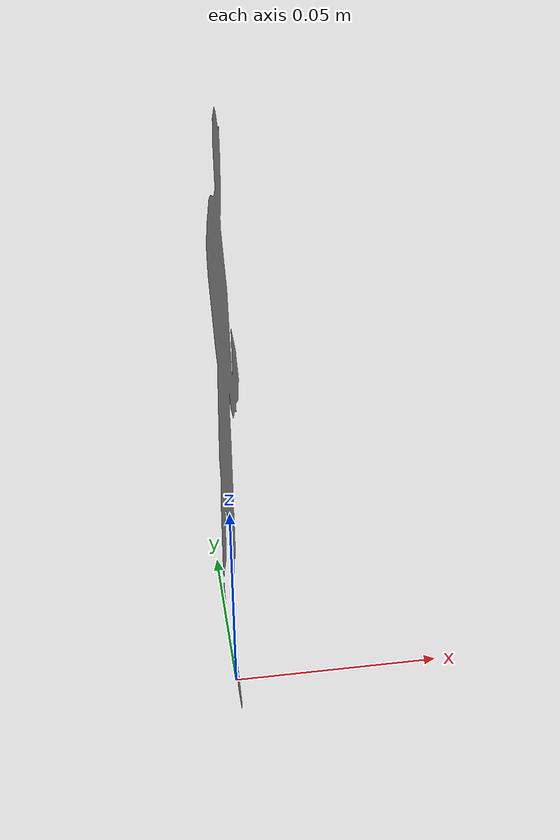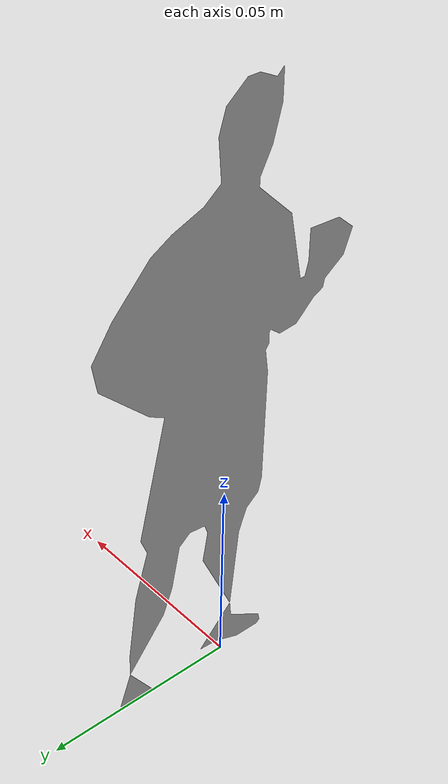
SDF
<?xml version="1.0"?>
<sdf version="1.10">
  <model name="community_person_03">
    <static>true</static>
    <link name="board">
      <collision name="collision"><pose>0 0 0.0750 0 0 0</pose><geometry><box><size>0.004 0.070203 0.150000</size></box></geometry></collision>
      <visual name="person"><geometry><mesh><uri>model://community_person_03/meshes/person.obj</uri></mesh></geometry></visual>
    </link>
  </model>
</sdf>
